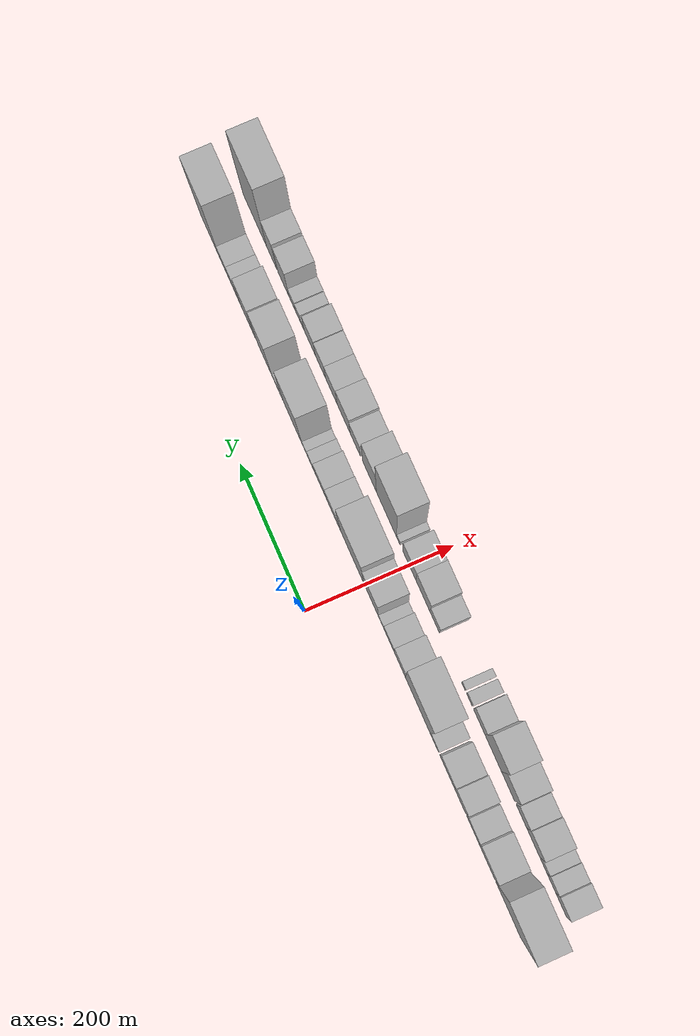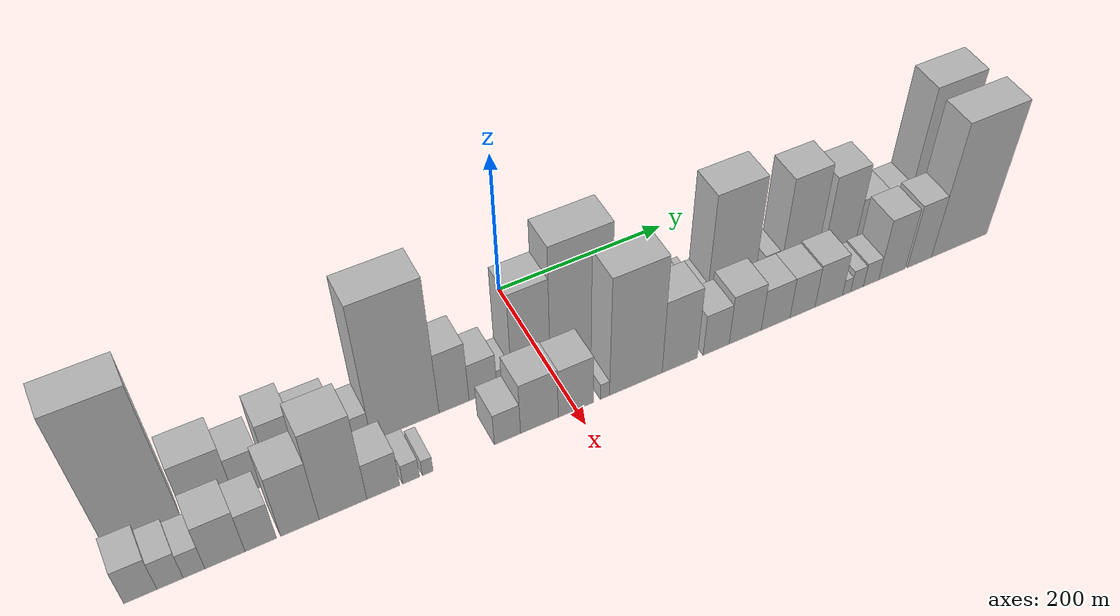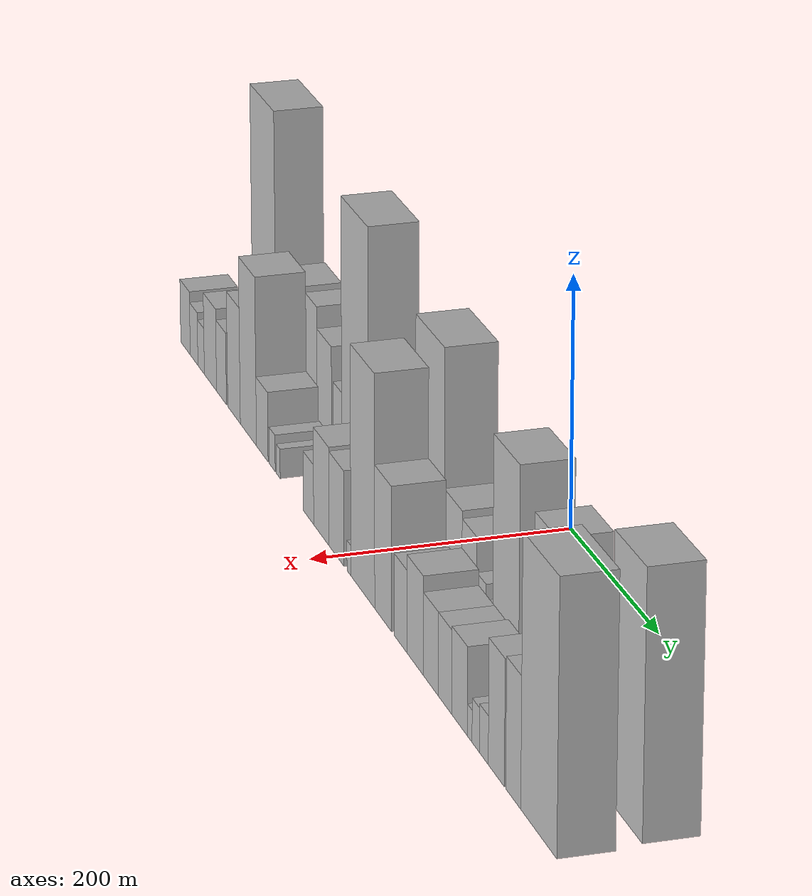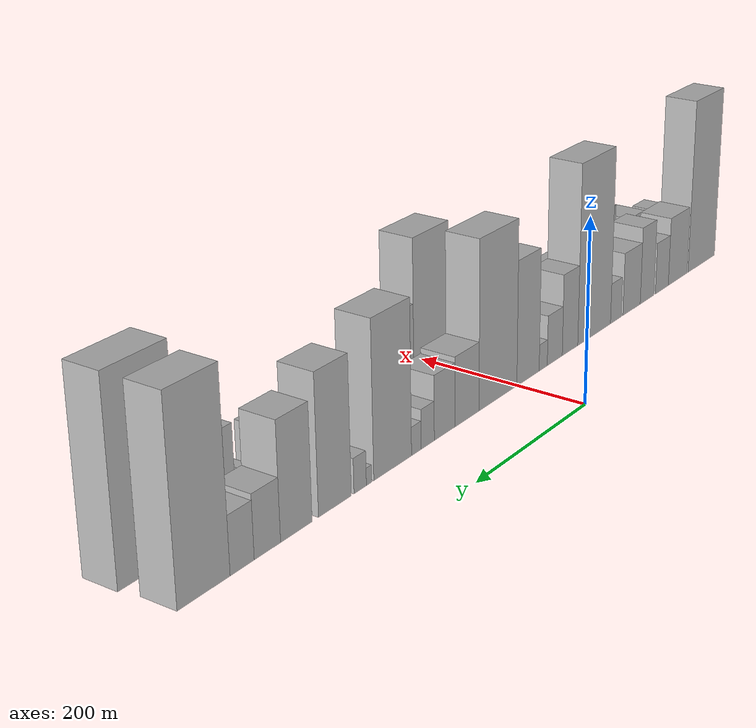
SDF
<sdf version="1.6">
 <world name="default">
  <scene>
   <sky><clouds><speed>12</speed></clouds></sky>
   <ambient>0.4 0.4 0.4 1</ambient>
   <background>0.7 0.7 0.7 1</background>
   <shadows>1</shadows>
  </scene>
  <gravity>0 0 -9.8066</gravity>
  <magnetic_field>6e-06 2.3e-05 -4.2e-05</magnetic_field>
  <physics default="0" name="default_physics" type="ode">
   <ode>
    <solver>
     <type>quick</type>
     <iters>10</iters>
     <sor>1.0</sor>
     <use_dynamic_moi_rescaling>0</use_dynamic_moi_rescaling>
    </solver>
    <constraints>
     <cfm>0</cfm>
     <erp>0.2</erp>
     <contact_max_correcting_vel>100</contact_max_correcting_vel>
     <contact_surface_layer>0.001</contact_surface_layer>
    </constraints>
   </ode>
   <max_step_size>0.004</max_step_size>
   <real_time_factor>1</real_time_factor>
   <real_time_update_rate>250</real_time_update_rate>
  </physics>
  <light name="sun" type="directional">
   <pose>0 0 10 0 0 0</pose>
   <diffuse>0.8 0.8 0.8 1</diffuse>
   <specular>0.2 0.2 0.2 1</specular>
   <attenuation>
    <range>1000</range>
    <constant>0.9</constant>
    <linear>0.01</linear>
    <quadratic>0.001</quadratic>
   </attenuation>
   <direction>-0.5 0.1 -0.9</direction>
  </light>
  <model name="building_1">
   <static>1</static>
   <pose>100.0000 -423.9628 0 0.000000 0.000000 0.000000</pose>
   <link name="link">
    <pose>0 0 106.50 0 0 0</pose>
    <collision name="collision"><geometry><box><size>40.0000 72.0744 213.0000</size></box></geometry></collision>
    <visual name="visual">
     <cast_shadows>0</cast_shadows>
     <geometry><box><size>40.0000 72.0744 213.0000</size></box></geometry>
     <material>
      <script>
       <uri>model://HANNAS_wall/materials/scripts</uri>
       <uri>model://HANNAS_wall/materials/textures</uri>
       <name>vrc/HANNAS_wall</name>
      </script>
     </material>
    </visual>
   </link>
  </model>
  <model name="building_2">
   <static>1</static>
   <pose>100.0000 -360.6604 0 0.000000 0.000000 0.000000</pose>
   <link name="link">
    <pose>0 0 42.00 0 0 0</pose>
    <collision name="collision"><geometry><box><size>40.0000 48.5305 84.0000</size></box></geometry></collision>
    <visual name="visual">
     <cast_shadows>0</cast_shadows>
     <geometry><box><size>40.0000 48.5305 84.0000</size></box></geometry>
     <material>
      <script>
       <uri>model://HANNAS_wall/materials/scripts</uri>
       <uri>model://HANNAS_wall/materials/textures</uri>
       <name>vrc/HANNAS_wall</name>
      </script>
     </material>
    </visual>
   </link>
  </model>
  <model name="building_3">
   <static>1</static>
   <pose>100.0000 -320.0879 0 0.000000 0.000000 0.000000</pose>
   <link name="link">
    <pose>0 0 31.50 0 0 0</pose>
    <collision name="collision"><geometry><box><size>40.0000 32.6146 63.0000</size></box></geometry></collision>
    <visual name="visual">
     <cast_shadows>0</cast_shadows>
     <geometry><box><size>40.0000 32.6146 63.0000</size></box></geometry>
     <material>
      <script>
       <uri>model://HANNAS_wall/materials/scripts</uri>
       <uri>model://HANNAS_wall/materials/textures</uri>
       <name>vrc/HANNAS_wall</name>
      </script>
     </material>
    </visual>
   </link>
  </model>
  <model name="building_4">
   <static>1</static>
   <pose>100.0000 -283.1633 0 0.000000 0.000000 0.000000</pose>
   <link name="link">
    <pose>0 0 46.50 0 0 0</pose>
    <collision name="collision"><geometry><box><size>40.0000 33.2346 93.0000</size></box></geometry></collision>
    <visual name="visual">
     <cast_shadows>0</cast_shadows>
     <geometry><box><size>40.0000 33.2346 93.0000</size></box></geometry>
     <material>
      <script>
       <uri>model://HANNAS_wall/materials/scripts</uri>
       <uri>model://HANNAS_wall/materials/textures</uri>
       <name>vrc/HANNAS_wall</name>
      </script>
     </material>
    </visual>
   </link>
  </model>
  <model name="building_5">
   <static>1</static>
   <pose>100.0000 -245.8384 0 0.000000 0.000000 0.000000</pose>
   <link name="link">
    <pose>0 0 37.50 0 0 0</pose>
    <collision name="collision"><geometry><box><size>40.0000 41.4151 75.0000</size></box></geometry></collision>
    <visual name="visual">
     <cast_shadows>0</cast_shadows>
     <geometry><box><size>40.0000 41.4151 75.0000</size></box></geometry>
     <material>
      <script>
       <uri>model://HANNAS_wall/materials/scripts</uri>
       <uri>model://HANNAS_wall/materials/textures</uri>
       <name>vrc/HANNAS_wall</name>
      </script>
     </material>
    </visual>
   </link>
  </model>
  <model name="building_6">
   <static>1</static>
   <pose>100.0000 -208.7317 0 0.000000 0.000000 0.000000</pose>
   <link name="link">
    <pose>0 0 24.00 0 0 0</pose>
    <collision name="collision"><geometry><box><size>40.0000 24.7985 48.0000</size></box></geometry></collision>
    <visual name="visual">
     <cast_shadows>0</cast_shadows>
     <geometry><box><size>40.0000 24.7985 48.0000</size></box></geometry>
     <material>
      <script>
       <uri>model://HANNAS_wall/materials/scripts</uri>
       <uri>model://HANNAS_wall/materials/textures</uri>
       <name>vrc/HANNAS_wall</name>
      </script>
     </material>
    </visual>
   </link>
  </model>
  <model name="building_7">
   <static>1</static>
   <pose>100.0000 -159.8687 0 0.000000 0.000000 0.000000</pose>
   <link name="link">
    <pose>0 0 103.50 0 0 0</pose>
    <collision name="collision"><geometry><box><size>40.0000 72.9274 207.0000</size></box></geometry></collision>
    <visual name="visual">
     <cast_shadows>0</cast_shadows>
     <geometry><box><size>40.0000 72.9274 207.0000</size></box></geometry>
     <material>
      <script>
       <uri>model://HANNAS_wall/materials/scripts</uri>
       <uri>model://HANNAS_wall/materials/textures</uri>
       <name>vrc/HANNAS_wall</name>
      </script>
     </material>
    </visual>
   </link>
  </model>
  <model name="building_8">
   <static>1</static>
   <pose>100.0000 -106.9066 0 0.000000 0.000000 0.000000</pose>
   <link name="link">
    <pose>0 0 46.50 0 0 0</pose>
    <collision name="collision"><geometry><box><size>40.0000 32.9969 93.0000</size></box></geometry></collision>
    <visual name="visual">
     <cast_shadows>0</cast_shadows>
     <geometry><box><size>40.0000 32.9969 93.0000</size></box></geometry>
     <material>
      <script>
       <uri>model://HANNAS_wall/materials/scripts</uri>
       <uri>model://HANNAS_wall/materials/textures</uri>
       <name>vrc/HANNAS_wall</name>
      </script>
     </material>
    </visual>
   </link>
  </model>
  <model name="building_9">
   <static>1</static>
   <pose>100.0000 -74.8496 0 0.000000 0.000000 0.000000</pose>
   <link name="link">
    <pose>0 0 28.50 0 0 0</pose>
    <collision name="collision"><geometry><box><size>40.0000 31.1170 57.0000</size></box></geometry></collision>
    <visual name="visual">
     <cast_shadows>0</cast_shadows>
     <geometry><box><size>40.0000 31.1170 57.0000</size></box></geometry>
     <material>
      <script>
       <uri>model://HANNAS_wall/materials/scripts</uri>
       <uri>model://HANNAS_wall/materials/textures</uri>
       <name>vrc/HANNAS_wall</name>
      </script>
     </material>
    </visual>
   </link>
  </model>
  <model name="building_10">
   <static>1</static>
   <pose>100.0000 -51.0342 0 0.000000 0.000000 0.000000</pose>
   <link name="link">
    <pose>0 0 15.00 0 0 0</pose>
    <collision name="collision"><geometry><box><size>40.0000 16.5138 30.0000</size></box></geometry></collision>
    <visual name="visual">
     <cast_shadows>0</cast_shadows>
     <geometry><box><size>40.0000 16.5138 30.0000</size></box></geometry>
     <material>
      <script>
       <uri>model://HANNAS_wall/materials/scripts</uri>
       <uri>model://HANNAS_wall/materials/textures</uri>
       <name>vrc/HANNAS_wall</name>
      </script>
     </material>
    </visual>
   </link>
  </model>
  <model name="building_11">
   <static>1</static>
   <pose>100.0000 -20.7243 0 0.000000 0.000000 0.000000</pose>
   <link name="link">
    <pose>0 0 69.00 0 0 0</pose>
    <collision name="collision"><geometry><box><size>40.0000 44.1060 138.0000</size></box></geometry></collision>
    <visual name="visual">
     <cast_shadows>0</cast_shadows>
     <geometry><box><size>40.0000 44.1060 138.0000</size></box></geometry>
     <material>
      <script>
       <uri>model://HANNAS_wall/materials/scripts</uri>
       <uri>model://HANNAS_wall/materials/textures</uri>
       <name>vrc/HANNAS_wall</name>
      </script>
     </material>
    </visual>
   </link>
  </model>
  <model name="building_12">
   <static>1</static>
   <pose>100.0000 36.9097 0 0.000000 0.000000 0.000000</pose>
   <link name="link">
    <pose>0 0 91.50 0 0 0</pose>
    <collision name="collision"><geometry><box><size>40.0000 71.1620 183.0000</size></box></geometry></collision>
    <visual name="visual">
     <cast_shadows>0</cast_shadows>
     <geometry><box><size>40.0000 71.1620 183.0000</size></box></geometry>
     <material>
      <script>
       <uri>model://HANNAS_wall/materials/scripts</uri>
       <uri>model://HANNAS_wall/materials/textures</uri>
       <name>vrc/HANNAS_wall</name>
      </script>
     </material>
    </visual>
   </link>
  </model>
  <model name="building_13">
   <static>1</static>
   <pose>100.0000 94.2448 0 0.000000 0.000000 0.000000</pose>
   <link name="link">
    <pose>0 0 37.50 0 0 0</pose>
    <collision name="collision"><geometry><box><size>40.0000 43.5082 75.0000</size></box></geometry></collision>
    <visual name="visual">
     <cast_shadows>0</cast_shadows>
     <geometry><box><size>40.0000 43.5082 75.0000</size></box></geometry>
     <material>
      <script>
       <uri>model://HANNAS_wall/materials/scripts</uri>
       <uri>model://HANNAS_wall/materials/textures</uri>
       <name>vrc/HANNAS_wall</name>
      </script>
     </material>
    </visual>
   </link>
  </model>
  <model name="building_14">
   <static>1</static>
   <pose>100.0000 133.6584 0 0.000000 0.000000 0.000000</pose>
   <link name="link">
    <pose>0 0 34.50 0 0 0</pose>
    <collision name="collision"><geometry><box><size>40.0000 35.3190 69.0000</size></box></geometry></collision>
    <visual name="visual">
     <cast_shadows>0</cast_shadows>
     <geometry><box><size>40.0000 35.3190 69.0000</size></box></geometry>
     <material>
      <script>
       <uri>model://HANNAS_wall/materials/scripts</uri>
       <uri>model://HANNAS_wall/materials/textures</uri>
       <name>vrc/HANNAS_wall</name>
      </script>
     </material>
    </visual>
   </link>
  </model>
  <model name="building_15">
   <static>1</static>
   <pose>100.0000 162.3067 0 0.000000 0.000000 0.000000</pose>
   <link name="link">
    <pose>0 0 21.00 0 0 0</pose>
    <collision name="collision"><geometry><box><size>40.0000 21.9776 42.0000</size></box></geometry></collision>
    <visual name="visual">
     <cast_shadows>0</cast_shadows>
     <geometry><box><size>40.0000 21.9776 42.0000</size></box></geometry>
     <material>
      <script>
       <uri>model://HANNAS_wall/materials/scripts</uri>
       <uri>model://HANNAS_wall/materials/textures</uri>
       <name>vrc/HANNAS_wall</name>
      </script>
     </material>
    </visual>
   </link>
  </model>
  <model name="building_16">
   <static>1</static>
   <pose>100.0000 181.3218 0 0.000000 0.000000 0.000000</pose>
   <link name="link">
    <pose>0 0 15.00 0 0 0</pose>
    <collision name="collision"><geometry><box><size>40.0000 16.0527 30.0000</size></box></geometry></collision>
    <visual name="visual">
     <cast_shadows>0</cast_shadows>
     <geometry><box><size>40.0000 16.0527 30.0000</size></box></geometry>
     <material>
      <script>
       <uri>model://HANNAS_wall/materials/scripts</uri>
       <uri>model://HANNAS_wall/materials/textures</uri>
       <name>vrc/HANNAS_wall</name>
      </script>
     </material>
    </visual>
   </link>
  </model>
  <model name="building_17">
   <static>1</static>
   <pose>100.0000 219.3561 0 0.000000 0.000000 0.000000</pose>
   <link name="link">
    <pose>0 0 81.00 0 0 0</pose>
    <collision name="collision"><geometry><box><size>40.0000 60.0159 162.0000</size></box></geometry></collision>
    <visual name="visual">
     <cast_shadows>0</cast_shadows>
     <geometry><box><size>40.0000 60.0159 162.0000</size></box></geometry>
     <material>
      <script>
       <uri>model://HANNAS_wall/materials/scripts</uri>
       <uri>model://HANNAS_wall/materials/textures</uri>
       <name>vrc/HANNAS_wall</name>
      </script>
     </material>
    </visual>
   </link>
  </model>
  <model name="building_18">
   <static>1</static>
   <pose>100.0000 256.5494 0 0.000000 0.000000 0.000000</pose>
   <link name="link">
    <pose>0 0 9.00 0 0 0</pose>
    <collision name="collision"><geometry><box><size>40.0000 8.3707 18.0000</size></box></geometry></collision>
    <visual name="visual">
     <cast_shadows>0</cast_shadows>
     <geometry><box><size>40.0000 8.3707 18.0000</size></box></geometry>
     <material>
      <script>
       <uri>model://HANNAS_wall/materials/scripts</uri>
       <uri>model://HANNAS_wall/materials/textures</uri>
       <name>vrc/HANNAS_wall</name>
      </script>
     </material>
    </visual>
   </link>
  </model>
  <model name="building_19">
   <static>1</static>
   <pose>100.0000 270.1249 0 0.000000 0.000000 0.000000</pose>
   <link name="link">
    <pose>0 0 18.00 0 0 0</pose>
    <collision name="collision"><geometry><box><size>40.0000 18.7804 36.0000</size></box></geometry></collision>
    <visual name="visual">
     <cast_shadows>0</cast_shadows>
     <geometry><box><size>40.0000 18.7804 36.0000</size></box></geometry>
     <material>
      <script>
       <uri>model://HANNAS_wall/materials/scripts</uri>
       <uri>model://HANNAS_wall/materials/textures</uri>
       <name>vrc/HANNAS_wall</name>
      </script>
     </material>
    </visual>
   </link>
  </model>
  <model name="building_20">
   <static>1</static>
   <pose>100.0000 307.4246 0 0.000000 0.000000 0.000000</pose>
   <link name="link">
    <pose>0 0 70.50 0 0 0</pose>
    <collision name="collision"><geometry><box><size>40.0000 47.8190 141.0000</size></box></geometry></collision>
    <visual name="visual">
     <cast_shadows>0</cast_shadows>
     <geometry><box><size>40.0000 47.8190 141.0000</size></box></geometry>
     <material>
      <script>
       <uri>model://HANNAS_wall/materials/scripts</uri>
       <uri>model://HANNAS_wall/materials/textures</uri>
       <name>vrc/HANNAS_wall</name>
      </script>
     </material>
    </visual>
   </link>
  </model>
  <model name="building_21">
   <static>1</static>
   <pose>100.0000 362.0778 0 0.000000 0.000000 0.000000</pose>
   <link name="link">
    <pose>0 0 58.50 0 0 0</pose>
    <collision name="collision"><geometry><box><size>40.0000 43.4873 117.0000</size></box></geometry></collision>
    <visual name="visual">
     <cast_shadows>0</cast_shadows>
     <geometry><box><size>40.0000 43.4873 117.0000</size></box></geometry>
     <material>
      <script>
       <uri>model://HANNAS_wall/materials/scripts</uri>
       <uri>model://HANNAS_wall/materials/textures</uri>
       <name>vrc/HANNAS_wall</name>
      </script>
     </material>
    </visual>
   </link>
  </model>
  <model name="building_22">
   <static>1</static>
   <pose>100.0000 401.2309 0 0.000000 0.000000 0.000000</pose>
   <link name="link">
    <pose>0 0 31.50 0 0 0</pose>
    <collision name="collision"><geometry><box><size>40.0000 34.8189 63.0000</size></box></geometry></collision>
    <visual name="visual">
     <cast_shadows>0</cast_shadows>
     <geometry><box><size>40.0000 34.8189 63.0000</size></box></geometry>
     <material>
      <script>
       <uri>model://HANNAS_wall/materials/scripts</uri>
       <uri>model://HANNAS_wall/materials/textures</uri>
       <name>vrc/HANNAS_wall</name>
      </script>
     </material>
    </visual>
   </link>
  </model>
  <model name="building_23">
   <static>1</static>
   <pose>100.0000 434.0289 0 0.000000 0.000000 0.000000</pose>
   <link name="link">
    <pose>0 0 28.50 0 0 0</pose>
    <collision name="collision"><geometry><box><size>40.0000 30.7771 57.0000</size></box></geometry></collision>
    <visual name="visual">
     <cast_shadows>0</cast_shadows>
     <geometry><box><size>40.0000 30.7771 57.0000</size></box></geometry>
     <material>
      <script>
       <uri>model://HANNAS_wall/materials/scripts</uri>
       <uri>model://HANNAS_wall/materials/textures</uri>
       <name>vrc/HANNAS_wall</name>
      </script>
     </material>
    </visual>
   </link>
  </model>
  <model name="building_24">
   <static>1</static>
   <pose>100.0000 481.6502 0 0.000000 0.000000 0.000000</pose>
   <link name="link">
    <pose>0 0 97.50 0 0 0</pose>
    <collision name="collision"><geometry><box><size>40.0000 64.4656 195.0000</size></box></geometry></collision>
    <visual name="visual">
     <cast_shadows>0</cast_shadows>
     <geometry><box><size>40.0000 64.4656 195.0000</size></box></geometry>
     <material>
      <script>
       <uri>model://HANNAS_wall/materials/scripts</uri>
       <uri>model://HANNAS_wall/materials/textures</uri>
       <name>vrc/HANNAS_wall</name>
      </script>
     </material>
    </visual>
   </link>
  </model>
  <model name="building_25">
   <static>1</static>
   <pose>160.0000 -444.7383 0 0.000000 0.000000 0.000000</pose>
   <link name="link">
    <pose>0 0 27.00 0 0 0</pose>
    <collision name="collision"><geometry><box><size>40.0000 30.5234 54.0000</size></box></geometry></collision>
    <visual name="visual">
     <cast_shadows>0</cast_shadows>
     <geometry><box><size>40.0000 30.5234 54.0000</size></box></geometry>
     <material>
      <script>
       <uri>model://HANNAS_wall/materials/scripts</uri>
       <uri>model://HANNAS_wall/materials/textures</uri>
       <name>vrc/HANNAS_wall</name>
      </script>
     </material>
    </visual>
   </link>
  </model>
  <model name="building_26">
   <static>1</static>
   <pose>160.0000 -417.2198 0 0.000000 0.000000 0.000000</pose>
   <link name="link">
    <pose>0 0 22.50 0 0 0</pose>
    <collision name="collision"><geometry><box><size>40.0000 24.5135 45.0000</size></box></geometry></collision>
    <visual name="visual">
     <cast_shadows>0</cast_shadows>
     <geometry><box><size>40.0000 24.5135 45.0000</size></box></geometry>
     <material>
      <script>
       <uri>model://HANNAS_wall/materials/scripts</uri>
       <uri>model://HANNAS_wall/materials/textures</uri>
       <name>vrc/HANNAS_wall</name>
      </script>
     </material>
    </visual>
   </link>
  </model>
  <model name="building_27">
   <static>1</static>
   <pose>160.0000 -394.7276 0 0.000000 0.000000 0.000000</pose>
   <link name="link">
    <pose>0 0 19.50 0 0 0</pose>
    <collision name="collision"><geometry><box><size>40.0000 20.4709 39.0000</size></box></geometry></collision>
    <visual name="visual">
     <cast_shadows>0</cast_shadows>
     <geometry><box><size>40.0000 20.4709 39.0000</size></box></geometry>
     <material>
      <script>
       <uri>model://HANNAS_wall/materials/scripts</uri>
       <uri>model://HANNAS_wall/materials/textures</uri>
       <name>vrc/HANNAS_wall</name>
      </script>
     </material>
    </visual>
   </link>
  </model>
  <model name="building_28">
   <static>1</static>
   <pose>160.0000 -365.3189 0 0.000000 0.000000 0.000000</pose>
   <link name="link">
    <pose>0 0 34.50 0 0 0</pose>
    <collision name="collision"><geometry><box><size>40.0000 38.3467 69.0000</size></box></geometry></collision>
    <visual name="visual">
     <cast_shadows>0</cast_shadows>
     <geometry><box><size>40.0000 38.3467 69.0000</size></box></geometry>
     <material>
      <script>
       <uri>model://HANNAS_wall/materials/scripts</uri>
       <uri>model://HANNAS_wall/materials/textures</uri>
       <name>vrc/HANNAS_wall</name>
      </script>
     </material>
    </visual>
   </link>
  </model>
  <model name="building_29">
   <static>1</static>
   <pose>160.0000 -330.8487 0 0.000000 0.000000 0.000000</pose>
   <link name="link">
    <pose>0 0 30.00 0 0 0</pose>
    <collision name="collision"><geometry><box><size>40.0000 30.5936 60.0000</size></box></geometry></collision>
    <visual name="visual">
     <cast_shadows>0</cast_shadows>
     <geometry><box><size>40.0000 30.5936 60.0000</size></box></geometry>
     <material>
      <script>
       <uri>model://HANNAS_wall/materials/scripts</uri>
       <uri>model://HANNAS_wall/materials/textures</uri>
       <name>vrc/HANNAS_wall</name>
      </script>
     </material>
    </visual>
   </link>
  </model>
  <model name="building_30">
   <static>1</static>
   <pose>160.0000 -292.4388 0 0.000000 0.000000 0.000000</pose>
   <link name="link">
    <pose>0 0 48.00 0 0 0</pose>
    <collision name="collision"><geometry><box><size>40.0000 38.2261 96.0000</size></box></geometry></collision>
    <visual name="visual">
     <cast_shadows>0</cast_shadows>
     <geometry><box><size>40.0000 38.2261 96.0000</size></box></geometry>
     <material>
      <script>
       <uri>model://HANNAS_wall/materials/scripts</uri>
       <uri>model://HANNAS_wall/materials/textures</uri>
       <name>vrc/HANNAS_wall</name>
      </script>
     </material>
    </visual>
   </link>
  </model>
  <model name="building_31">
   <static>1</static>
   <pose>160.0000 -249.1922 0 0.000000 0.000000 0.000000</pose>
   <link name="link">
    <pose>0 0 69.00 0 0 0</pose>
    <collision name="collision"><geometry><box><size>40.0000 48.2671 138.0000</size></box></geometry></collision>
    <visual name="visual">
     <cast_shadows>0</cast_shadows>
     <geometry><box><size>40.0000 48.2671 138.0000</size></box></geometry>
     <material>
      <script>
       <uri>model://HANNAS_wall/materials/scripts</uri>
       <uri>model://HANNAS_wall/materials/textures</uri>
       <name>vrc/HANNAS_wall</name>
      </script>
     </material>
    </visual>
   </link>
  </model>
  <model name="building_32">
   <static>1</static>
   <pose>160.0000 -208.1195 0 0.000000 0.000000 0.000000</pose>
   <link name="link">
    <pose>0 0 28.50 0 0 0</pose>
    <collision name="collision"><geometry><box><size>40.0000 33.8783 57.0000</size></box></geometry></collision>
    <visual name="visual">
     <cast_shadows>0</cast_shadows>
     <geometry><box><size>40.0000 33.8783 57.0000</size></box></geometry>
     <material>
      <script>
       <uri>model://HANNAS_wall/materials/scripts</uri>
       <uri>model://HANNAS_wall/materials/textures</uri>
       <name>vrc/HANNAS_wall</name>
      </script>
     </material>
    </visual>
   </link>
  </model>
  <model name="building_33">
   <static>1</static>
   <pose>160.0000 -179.3375 0 0.000000 0.000000 0.000000</pose>
   <link name="link">
    <pose>0 0 15.00 0 0 0</pose>
    <collision name="collision"><geometry><box><size>40.0000 17.6855 30.0000</size></box></geometry></collision>
    <visual name="visual">
     <cast_shadows>0</cast_shadows>
     <geometry><box><size>40.0000 17.6855 30.0000</size></box></geometry>
     <material>
      <script>
       <uri>model://HANNAS_wall/materials/scripts</uri>
       <uri>model://HANNAS_wall/materials/textures</uri>
       <name>vrc/HANNAS_wall</name>
      </script>
     </material>
    </visual>
   </link>
  </model>
  <model name="building_34">
   <static>1</static>
   <pose>160.0000 -161.8771 0 0.000000 0.000000 0.000000</pose>
   <link name="link">
    <pose>0 0 12.00 0 0 0</pose>
    <collision name="collision"><geometry><box><size>40.0000 11.2353 24.0000</size></box></geometry></collision>
    <visual name="visual">
     <cast_shadows>0</cast_shadows>
     <geometry><box><size>40.0000 11.2353 24.0000</size></box></geometry>
     <material>
      <script>
       <uri>model://HANNAS_wall/materials/scripts</uri>
       <uri>model://HANNAS_wall/materials/textures</uri>
       <name>vrc/HANNAS_wall</name>
      </script>
     </material>
    </visual>
   </link>
  </model>
  <model name="building_35">
   <static>1</static>
   <pose>160.0000 -76.3034 0 0.000000 0.000000 0.000000</pose>
   <link name="link">
    <pose>0 0 24.00 0 0 0</pose>
    <collision name="collision"><geometry><box><size>40.0000 28.6374 48.0000</size></box></geometry></collision>
    <visual name="visual">
     <cast_shadows>0</cast_shadows>
     <geometry><box><size>40.0000 28.6374 48.0000</size></box></geometry>
     <material>
      <script>
       <uri>model://HANNAS_wall/materials/scripts</uri>
       <uri>model://HANNAS_wall/materials/textures</uri>
       <name>vrc/HANNAS_wall</name>
      </script>
     </material>
    </visual>
   </link>
  </model>
  <model name="building_36">
   <static>1</static>
   <pose>160.0000 -41.0311 0 0.000000 0.000000 0.000000</pose>
   <link name="link">
    <pose>0 0 39.00 0 0 0</pose>
    <collision name="collision"><geometry><box><size>40.0000 41.9072 78.0000</size></box></geometry></collision>
    <visual name="visual">
     <cast_shadows>0</cast_shadows>
     <geometry><box><size>40.0000 41.9072 78.0000</size></box></geometry>
     <material>
      <script>
       <uri>model://HANNAS_wall/materials/scripts</uri>
       <uri>model://HANNAS_wall/materials/textures</uri>
       <name>vrc/HANNAS_wall</name>
      </script>
     </material>
    </visual>
   </link>
  </model>
  <model name="building_37">
   <static>1</static>
   <pose>160.0000 -0.2286 0 0.000000 0.000000 0.000000</pose>
   <link name="link">
    <pose>0 0 37.50 0 0 0</pose>
    <collision name="collision"><geometry><box><size>40.0000 39.6980 75.0000</size></box></geometry></collision>
    <visual name="visual">
     <cast_shadows>0</cast_shadows>
     <geometry><box><size>40.0000 39.6980 75.0000</size></box></geometry>
     <material>
      <script>
       <uri>model://HANNAS_wall/materials/scripts</uri>
       <uri>model://HANNAS_wall/materials/textures</uri>
       <name>vrc/HANNAS_wall</name>
      </script>
     </material>
    </visual>
   </link>
  </model>
  <model name="building_38">
   <static>1</static>
   <pose>160.0000 32.8949 0 0.000000 0.000000 0.000000</pose>
   <link name="link">
    <pose>0 0 12.00 0 0 0</pose>
    <collision name="collision"><geometry><box><size>40.0000 10.5489 24.0000</size></box></geometry></collision>
    <visual name="visual">
     <cast_shadows>0</cast_shadows>
     <geometry><box><size>40.0000 10.5489 24.0000</size></box></geometry>
     <material>
      <script>
       <uri>model://HANNAS_wall/materials/scripts</uri>
       <uri>model://HANNAS_wall/materials/textures</uri>
       <name>vrc/HANNAS_wall</name>
      </script>
     </material>
    </visual>
   </link>
  </model>
  <model name="building_39">
   <static>1</static>
   <pose>160.0000 68.9535 0 0.000000 0.000000 0.000000</pose>
   <link name="link">
    <pose>0 0 90.00 0 0 0</pose>
    <collision name="collision"><geometry><box><size>40.0000 61.5685 180.0000</size></box></geometry></collision>
    <visual name="visual">
     <cast_shadows>0</cast_shadows>
     <geometry><box><size>40.0000 61.5685 180.0000</size></box></geometry>
     <material>
      <script>
       <uri>model://HANNAS_wall/materials/scripts</uri>
       <uri>model://HANNAS_wall/materials/textures</uri>
       <name>vrc/HANNAS_wall</name>
      </script>
     </material>
    </visual>
   </link>
  </model>
  <model name="building_40">
   <static>1</static>
   <pose>160.0000 120.7845 0 0.000000 0.000000 0.000000</pose>
   <link name="link">
    <pose>0 0 55.50 0 0 0</pose>
    <collision name="collision"><geometry><box><size>40.0000 42.0934 111.0000</size></box></geometry></collision>
    <visual name="visual">
     <cast_shadows>0</cast_shadows>
     <geometry><box><size>40.0000 42.0934 111.0000</size></box></geometry>
     <material>
      <script>
       <uri>model://HANNAS_wall/materials/scripts</uri>
       <uri>model://HANNAS_wall/materials/textures</uri>
       <name>vrc/HANNAS_wall</name>
      </script>
     </material>
    </visual>
   </link>
  </model>
  <model name="building_41">
   <static>1</static>
   <pose>160.0000 164.6068 0 0.000000 0.000000 0.000000</pose>
   <link name="link">
    <pose>0 0 31.50 0 0 0</pose>
    <collision name="collision"><geometry><box><size>40.0000 31.5514 63.0000</size></box></geometry></collision>
    <visual name="visual">
     <cast_shadows>0</cast_shadows>
     <geometry><box><size>40.0000 31.5514 63.0000</size></box></geometry>
     <material>
      <script>
       <uri>model://HANNAS_wall/materials/scripts</uri>
       <uri>model://HANNAS_wall/materials/textures</uri>
       <name>vrc/HANNAS_wall</name>
      </script>
     </material>
    </visual>
   </link>
  </model>
  <model name="building_42">
   <static>1</static>
   <pose>160.0000 200.2568 0 0.000000 0.000000 0.000000</pose>
   <link name="link">
    <pose>0 0 37.50 0 0 0</pose>
    <collision name="collision"><geometry><box><size>40.0000 39.7485 75.0000</size></box></geometry></collision>
    <visual name="visual">
     <cast_shadows>0</cast_shadows>
     <geometry><box><size>40.0000 39.7485 75.0000</size></box></geometry>
     <material>
      <script>
       <uri>model://HANNAS_wall/materials/scripts</uri>
       <uri>model://HANNAS_wall/materials/textures</uri>
       <name>vrc/HANNAS_wall</name>
      </script>
     </material>
    </visual>
   </link>
  </model>
  <model name="building_43">
   <static>1</static>
   <pose>160.0000 238.1551 0 0.000000 0.000000 0.000000</pose>
   <link name="link">
    <pose>0 0 31.50 0 0 0</pose>
    <collision name="collision"><geometry><box><size>40.0000 36.0481 63.0000</size></box></geometry></collision>
    <visual name="visual">
     <cast_shadows>0</cast_shadows>
     <geometry><box><size>40.0000 36.0481 63.0000</size></box></geometry>
     <material>
      <script>
       <uri>model://HANNAS_wall/materials/scripts</uri>
       <uri>model://HANNAS_wall/materials/textures</uri>
       <name>vrc/HANNAS_wall</name>
      </script>
     </material>
    </visual>
   </link>
  </model>
  <model name="building_44">
   <static>1</static>
   <pose>160.0000 272.0808 0 0.000000 0.000000 0.000000</pose>
   <link name="link">
    <pose>0 0 31.50 0 0 0</pose>
    <collision name="collision"><geometry><box><size>40.0000 31.8033 63.0000</size></box></geometry></collision>
    <visual name="visual">
     <cast_shadows>0</cast_shadows>
     <geometry><box><size>40.0000 31.8033 63.0000</size></box></geometry>
     <material>
      <script>
       <uri>model://HANNAS_wall/materials/scripts</uri>
       <uri>model://HANNAS_wall/materials/textures</uri>
       <name>vrc/HANNAS_wall</name>
      </script>
     </material>
    </visual>
   </link>
  </model>
  <model name="building_45">
   <static>1</static>
   <pose>160.0000 305.8310 0 0.000000 0.000000 0.000000</pose>
   <link name="link">
    <pose>0 0 33.00 0 0 0</pose>
    <collision name="collision"><geometry><box><size>40.0000 35.6972 66.0000</size></box></geometry></collision>
    <visual name="visual">
     <cast_shadows>0</cast_shadows>
     <geometry><box><size>40.0000 35.6972 66.0000</size></box></geometry>
     <material>
      <script>
       <uri>model://HANNAS_wall/materials/scripts</uri>
       <uri>model://HANNAS_wall/materials/textures</uri>
       <name>vrc/HANNAS_wall</name>
      </script>
     </material>
    </visual>
   </link>
  </model>
  <model name="building_46">
   <static>1</static>
   <pose>160.0000 329.0628 0 0.000000 0.000000 0.000000</pose>
   <link name="link">
    <pose>0 0 12.00 0 0 0</pose>
    <collision name="collision"><geometry><box><size>40.0000 10.7664 24.0000</size></box></geometry></collision>
    <visual name="visual">
     <cast_shadows>0</cast_shadows>
     <geometry><box><size>40.0000 10.7664 24.0000</size></box></geometry>
     <material>
      <script>
       <uri>model://HANNAS_wall/materials/scripts</uri>
       <uri>model://HANNAS_wall/materials/textures</uri>
       <name>vrc/HANNAS_wall</name>
      </script>
     </material>
    </visual>
   </link>
  </model>
  <model name="building_47">
   <static>1</static>
   <pose>160.0000 342.7141 0 0.000000 0.000000 0.000000</pose>
   <link name="link">
    <pose>0 0 16.50 0 0 0</pose>
    <collision name="collision"><geometry><box><size>40.0000 16.5361 33.0000</size></box></geometry></collision>
    <visual name="visual">
     <cast_shadows>0</cast_shadows>
     <geometry><box><size>40.0000 16.5361 33.0000</size></box></geometry>
     <material>
      <script>
       <uri>model://HANNAS_wall/materials/scripts</uri>
       <uri>model://HANNAS_wall/materials/textures</uri>
       <name>vrc/HANNAS_wall</name>
      </script>
     </material>
    </visual>
   </link>
  </model>
  <model name="building_48">
   <static>1</static>
   <pose>160.0000 361.0943 0 0.000000 0.000000 0.000000</pose>
   <link name="link">
    <pose>0 0 18.00 0 0 0</pose>
    <collision name="collision"><geometry><box><size>40.0000 20.2243 36.0000</size></box></geometry></collision>
    <visual name="visual">
     <cast_shadows>0</cast_shadows>
     <geometry><box><size>40.0000 20.2243 36.0000</size></box></geometry>
     <material>
      <script>
       <uri>model://HANNAS_wall/materials/scripts</uri>
       <uri>model://HANNAS_wall/materials/textures</uri>
       <name>vrc/HANNAS_wall</name>
      </script>
     </material>
    </visual>
   </link>
  </model>
  <model name="building_49">
   <static>1</static>
   <pose>160.0000 389.0331 0 0.000000 0.000000 0.000000</pose>
   <link name="link">
    <pose>0 0 46.50 0 0 0</pose>
    <collision name="collision"><geometry><box><size>40.0000 35.6534 93.0000</size></box></geometry></collision>
    <visual name="visual">
     <cast_shadows>0</cast_shadows>
     <geometry><box><size>40.0000 35.6534 93.0000</size></box></geometry>
     <material>
      <script>
       <uri>model://HANNAS_wall/materials/scripts</uri>
       <uri>model://HANNAS_wall/materials/textures</uri>
       <name>vrc/HANNAS_wall</name>
      </script>
     </material>
    </visual>
   </link>
  </model>
  <model name="building_50">
   <static>1</static>
   <pose>160.0000 426.1880 0 0.000000 0.000000 0.000000</pose>
   <link name="link">
    <pose>0 0 48.00 0 0 0</pose>
    <collision name="collision"><geometry><box><size>40.0000 32.6564 96.0000</size></box></geometry></collision>
    <visual name="visual">
     <cast_shadows>0</cast_shadows>
     <geometry><box><size>40.0000 32.6564 96.0000</size></box></geometry>
     <material>
      <script>
       <uri>model://HANNAS_wall/materials/scripts</uri>
       <uri>model://HANNAS_wall/materials/textures</uri>
       <name>vrc/HANNAS_wall</name>
      </script>
     </material>
    </visual>
   </link>
  </model>
  <model name="building_51">
   <static>1</static>
   <pose>160.0000 480.8294 0 0.000000 0.000000 0.000000</pose>
   <link name="link">
    <pose>0 0 99.00 0 0 0</pose>
    <collision name="collision"><geometry><box><size>40.0000 76.6263 198.0000</size></box></geometry></collision>
    <visual name="visual">
     <cast_shadows>0</cast_shadows>
     <geometry><box><size>40.0000 76.6263 198.0000</size></box></geometry>
     <material>
      <script>
       <uri>model://HANNAS_wall/materials/scripts</uri>
       <uri>model://HANNAS_wall/materials/textures</uri>
       <name>vrc/HANNAS_wall</name>
      </script>
     </material>
    </visual>
   </link>
  </model>
 </world>
</sdf>
